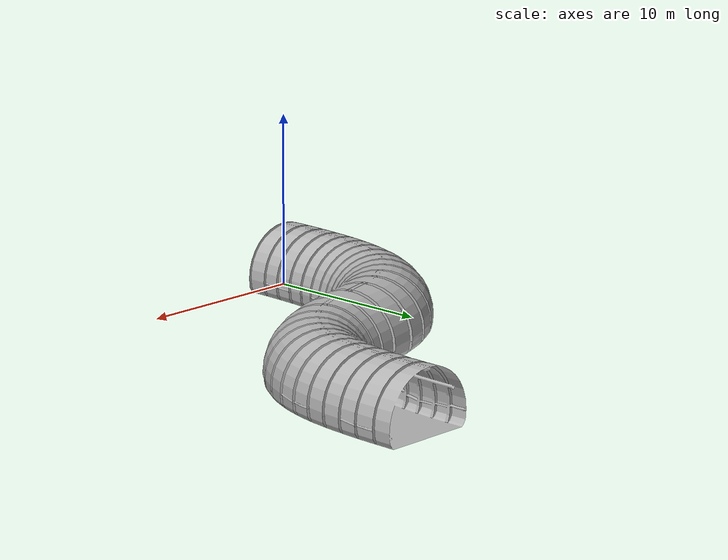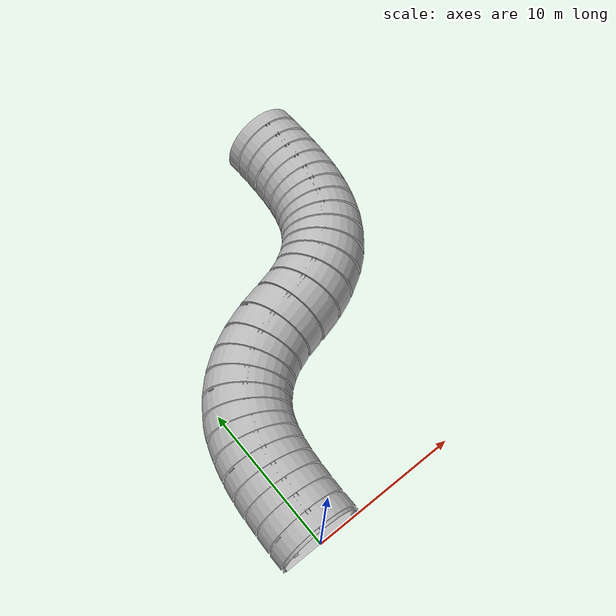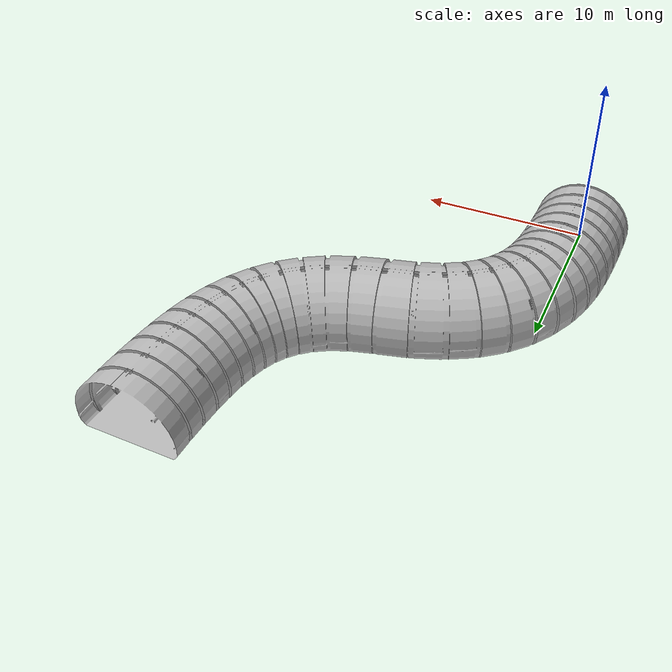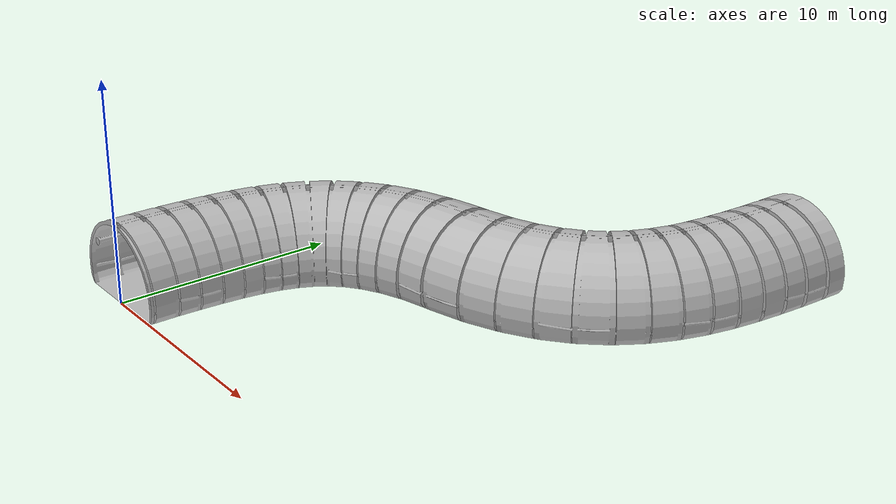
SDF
<?xml version="1.0" ?>
<sdf version="1.6">
  <model name="tunnel_bend_right">
    <static>true</static>
    <link name="link">
      <collision name="collision">
        <geometry>
          <mesh>
            <scale>0.01 0.01 0.01</scale>
            <uri>model://tunnel_bend_right/meshes/Tunnel_Bend_S_Right.obj</uri>
          </mesh>
        </geometry>
      </collision>
      <visual name="visual">
        <geometry>
          <mesh>
            <scale>0.01 0.01 0.01</scale>
            <uri>model://tunnel_bend_right/meshes/Tunnel_Bend_S_Right.obj</uri>
          </mesh>
        </geometry>
      </visual>
    </link>
  </model>
</sdf>
